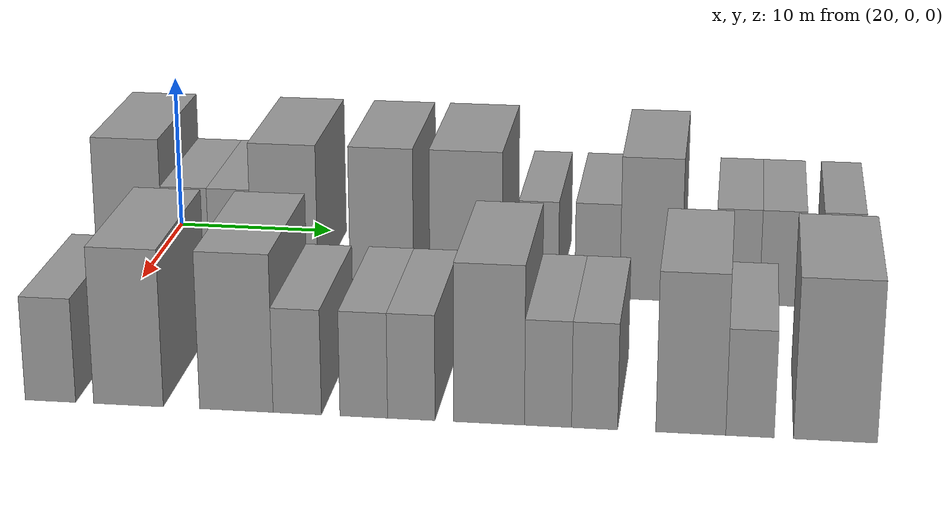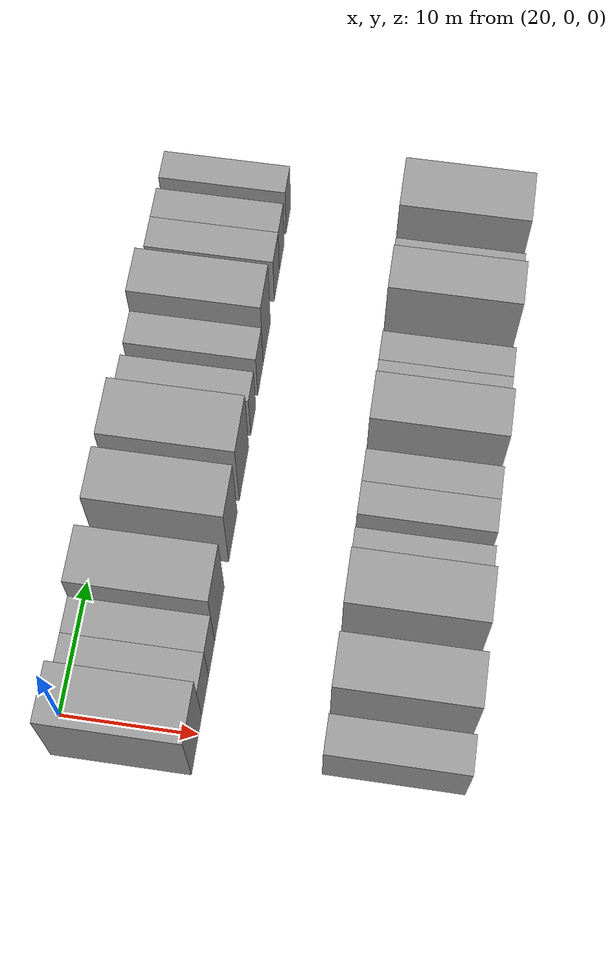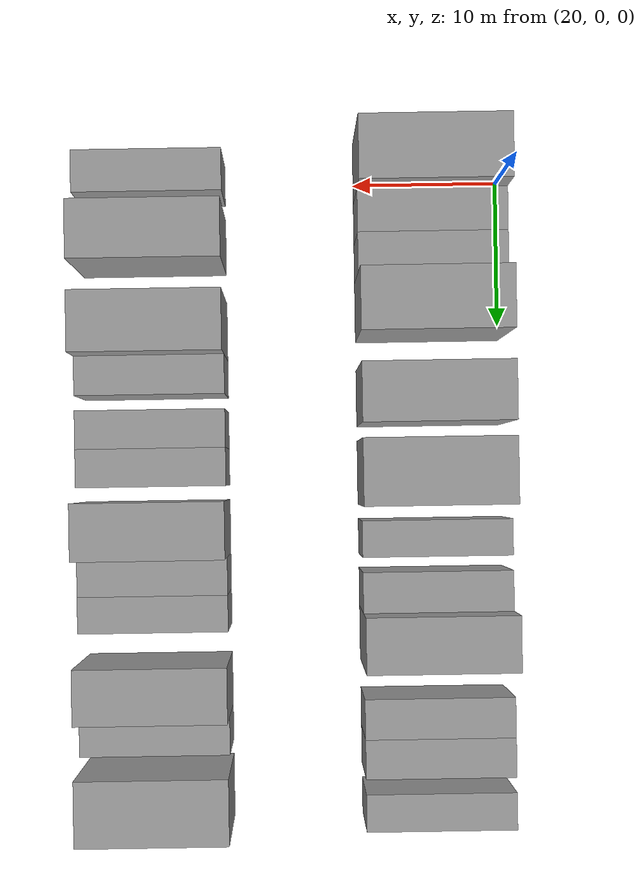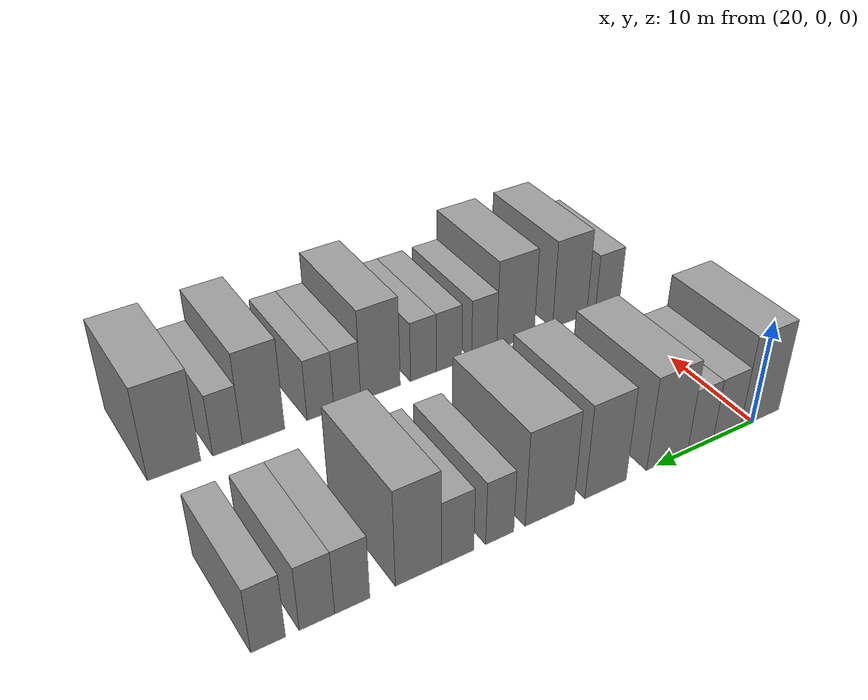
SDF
<sdf version="1.6">
 <world name="default">
  <model name="building_49">
   <static>1</static>
   <pose>25.0000 -0.7692 0 0.000000 0.000000 0.000000</pose>
   <link name="link">
    <pose>0 0 4.50 0 0 0</pose>
    <collision name="collision"><geometry><box><size>10.0000 4.2088 9.0000</size></box></geometry></collision>
    <visual name="visual">
     <cast_shadows>0</cast_shadows>
     <geometry><box><size>10.0000 4.2088 9.0000</size></box></geometry>
     <material>
      <script>
       <uri>model://grey_wall/materials/scripts</uri>
       <uri>model://grey_wall/materials/textures</uri>
       <name>vrc/grey_wall</name>
      </script>
     </material>
    </visual>
   </link>
  </model>
  <model name="building_50">
   <static>1</static>
   <pose>25.0000 2.7833 0 0.000000 0.000000 0.000000</pose>
   <link name="link">
    <pose>0 0 3.00 0 0 0</pose>
    <collision name="collision"><geometry><box><size>10.0000 2.8960 6.0000</size></box></geometry></collision>
    <visual name="visual">
     <cast_shadows>0</cast_shadows>
     <geometry><box><size>10.0000 2.8960 6.0000</size></box></geometry>
     <material>
      <script>
       <uri>model://grey_wall/materials/scripts</uri>
       <uri>model://grey_wall/materials/textures</uri>
       <name>vrc/grey_wall</name>
      </script>
     </material>
    </visual>
   </link>
  </model>
  <model name="building_51">
   <static>1</static>
   <pose>25.0000 5.5601 0 0.000000 0.000000 0.000000</pose>
   <link name="link">
    <pose>0 0 3.00 0 0 0</pose>
    <collision name="collision"><geometry><box><size>10.0000 2.6575 6.0000</size></box></geometry></collision>
    <visual name="visual">
     <cast_shadows>0</cast_shadows>
     <geometry><box><size>10.0000 2.6575 6.0000</size></box></geometry>
     <material>
      <script>
       <uri>model://grey_wall/materials/scripts</uri>
       <uri>model://grey_wall/materials/textures</uri>
       <name>vrc/grey_wall</name>
      </script>
     </material>
    </visual>
   </link>
  </model>
  <model name="building_52">
   <static>1</static>
   <pose>25.0000 8.9630 0 0.000000 0.000000 0.000000</pose>
   <link name="link">
    <pose>0 0 4.50 0 0 0</pose>
    <collision name="collision"><geometry><box><size>10.0000 4.1483 9.0000</size></box></geometry></collision>
    <visual name="visual">
     <cast_shadows>0</cast_shadows>
     <geometry><box><size>10.0000 4.1483 9.0000</size></box></geometry>
     <material>
      <script>
       <uri>model://grey_wall/materials/scripts</uri>
       <uri>model://grey_wall/materials/textures</uri>
       <name>vrc/grey_wall</name>
      </script>
     </material>
    </visual>
   </link>
  </model>
  <model name="building_53">
   <static>1</static>
   <pose>25.0000 15.0030 0 0.000000 0.000000 0.000000</pose>
   <link name="link">
    <pose>0 0 4.50 0 0 0</pose>
    <collision name="collision"><geometry><box><size>10.0000 3.9316 9.0000</size></box></geometry></collision>
    <visual name="visual">
     <cast_shadows>0</cast_shadows>
     <geometry><box><size>10.0000 3.9316 9.0000</size></box></geometry>
     <material>
      <script>
       <uri>model://grey_wall/materials/scripts</uri>
       <uri>model://grey_wall/materials/textures</uri>
       <name>vrc/grey_wall</name>
      </script>
     </material>
    </visual>
   </link>
  </model>
  <model name="building_54">
   <static>1</static>
   <pose>25.0000 20.1888 0 0.000000 0.000000 0.000000</pose>
   <link name="link">
    <pose>0 0 4.50 0 0 0</pose>
    <collision name="collision"><geometry><box><size>10.0000 4.4401 9.0000</size></box></geometry></collision>
    <visual name="visual">
     <cast_shadows>0</cast_shadows>
     <geometry><box><size>10.0000 4.4401 9.0000</size></box></geometry>
     <material>
      <script>
       <uri>model://grey_wall/materials/scripts</uri>
       <uri>model://grey_wall/materials/textures</uri>
       <name>vrc/grey_wall</name>
      </script>
     </material>
    </visual>
   </link>
  </model>
  <model name="building_55">
   <static>1</static>
   <pose>25.0000 24.6258 0 0.000000 0.000000 0.000000</pose>
   <link name="link">
    <pose>0 0 3.00 0 0 0</pose>
    <collision name="collision"><geometry><box><size>10.0000 2.4338 6.0000</size></box></geometry></collision>
    <visual name="visual">
     <cast_shadows>0</cast_shadows>
     <geometry><box><size>10.0000 2.4338 6.0000</size></box></geometry>
     <material>
      <script>
       <uri>model://grey_wall/materials/scripts</uri>
       <uri>model://grey_wall/materials/textures</uri>
       <name>vrc/grey_wall</name>
      </script>
     </material>
    </visual>
   </link>
  </model>
  <model name="building_56">
   <static>1</static>
   <pose>25.0000 28.2052 0 0.000000 0.000000 0.000000</pose>
   <link name="link">
    <pose>0 0 3.00 0 0 0</pose>
    <collision name="collision"><geometry><box><size>10.0000 2.7251 6.0000</size></box></geometry></collision>
    <visual name="visual">
     <cast_shadows>0</cast_shadows>
     <geometry><box><size>10.0000 2.7251 6.0000</size></box></geometry>
     <material>
      <script>
       <uri>model://grey_wall/materials/scripts</uri>
       <uri>model://grey_wall/materials/textures</uri>
       <name>vrc/grey_wall</name>
      </script>
     </material>
    </visual>
   </link>
  </model>
  <model name="building_57">
   <static>1</static>
   <pose>25.0000 31.4204 0 0.000000 0.000000 0.000000</pose>
   <link name="link">
    <pose>0 0 4.50 0 0 0</pose>
    <collision name="collision"><geometry><box><size>10.0000 3.7054 9.0000</size></box></geometry></collision>
    <visual name="visual">
     <cast_shadows>0</cast_shadows>
     <geometry><box><size>10.0000 3.7054 9.0000</size></box></geometry>
     <material>
      <script>
       <uri>model://grey_wall/materials/scripts</uri>
       <uri>model://grey_wall/materials/textures</uri>
       <name>vrc/grey_wall</name>
      </script>
     </material>
    </visual>
   </link>
  </model>
  <model name="building_58">
   <static>1</static>
   <pose>25.0000 36.6185 0 0.000000 0.000000 0.000000</pose>
   <link name="link">
    <pose>0 0 3.00 0 0 0</pose>
    <collision name="collision"><geometry><box><size>10.0000 2.6908 6.0000</size></box></geometry></collision>
    <visual name="visual">
     <cast_shadows>0</cast_shadows>
     <geometry><box><size>10.0000 2.6908 6.0000</size></box></geometry>
     <material>
      <script>
       <uri>model://grey_wall/materials/scripts</uri>
       <uri>model://grey_wall/materials/textures</uri>
       <name>vrc/grey_wall</name>
      </script>
     </material>
    </visual>
   </link>
  </model>
  <model name="building_59">
   <static>1</static>
   <pose>25.0000 39.2777 0 0.000000 0.000000 0.000000</pose>
   <link name="link">
    <pose>0 0 3.00 0 0 0</pose>
    <collision name="collision"><geometry><box><size>10.0000 2.6276 6.0000</size></box></geometry></collision>
    <visual name="visual">
     <cast_shadows>0</cast_shadows>
     <geometry><box><size>10.0000 2.6276 6.0000</size></box></geometry>
     <material>
      <script>
       <uri>model://grey_wall/materials/scripts</uri>
       <uri>model://grey_wall/materials/textures</uri>
       <name>vrc/grey_wall</name>
      </script>
     </material>
    </visual>
   </link>
  </model>
  <model name="building_60">
   <static>1</static>
   <pose>25.0000 42.8340 0 0.000000 0.000000 0.000000</pose>
   <link name="link">
    <pose>0 0 3.00 0 0 0</pose>
    <collision name="collision"><geometry><box><size>10.0000 2.4851 6.0000</size></box></geometry></collision>
    <visual name="visual">
     <cast_shadows>0</cast_shadows>
     <geometry><box><size>10.0000 2.4851 6.0000</size></box></geometry>
     <material>
      <script>
       <uri>model://grey_wall/materials/scripts</uri>
       <uri>model://grey_wall/materials/textures</uri>
       <name>vrc/grey_wall</name>
      </script>
     </material>
    </visual>
   </link>
  </model>
  <model name="building_149">
   <static>1</static>
   <pose>44.0000 -0.1097 0 0.000000 0.000000 0.000000</pose>
   <link name="link">
    <pose>0 0 3.00 0 0 0</pose>
    <collision name="collision"><geometry><box><size>10.0000 2.8105 6.0000</size></box></geometry></collision>
    <visual name="visual">
     <cast_shadows>0</cast_shadows>
     <geometry><box><size>10.0000 2.8105 6.0000</size></box></geometry>
     <material>
      <script>
       <uri>model://grey_wall/materials/scripts</uri>
       <uri>model://grey_wall/materials/textures</uri>
       <name>vrc/grey_wall</name>
      </script>
     </material>
    </visual>
   </link>
  </model>
  <model name="building_150">
   <static>1</static>
   <pose>44.0000 4.2238 0 0.000000 0.000000 0.000000</pose>
   <link name="link">
    <pose>0 0 4.50 0 0 0</pose>
    <collision name="collision"><geometry><box><size>10.0000 3.8566 9.0000</size></box></geometry></collision>
    <visual name="visual">
     <cast_shadows>0</cast_shadows>
     <geometry><box><size>10.0000 3.8566 9.0000</size></box></geometry>
     <material>
      <script>
       <uri>model://grey_wall/materials/scripts</uri>
       <uri>model://grey_wall/materials/textures</uri>
       <name>vrc/grey_wall</name>
      </script>
     </material>
    </visual>
   </link>
  </model>
  <model name="building_151">
   <static>1</static>
   <pose>44.0000 10.1612 0 0.000000 0.000000 0.000000</pose>
   <link name="link">
    <pose>0 0 4.50 0 0 0</pose>
    <collision name="collision"><geometry><box><size>10.0000 4.0180 9.0000</size></box></geometry></collision>
    <visual name="visual">
     <cast_shadows>0</cast_shadows>
     <geometry><box><size>10.0000 4.0180 9.0000</size></box></geometry>
     <material>
      <script>
       <uri>model://grey_wall/materials/scripts</uri>
       <uri>model://grey_wall/materials/textures</uri>
       <name>vrc/grey_wall</name>
      </script>
     </material>
    </visual>
   </link>
  </model>
  <model name="building_152">
   <static>1</static>
   <pose>44.0000 13.4859 0 0.000000 0.000000 0.000000</pose>
   <link name="link">
    <pose>0 0 3.00 0 0 0</pose>
    <collision name="collision"><geometry><box><size>10.0000 2.6315 6.0000</size></box></geometry></collision>
    <visual name="visual">
     <cast_shadows>0</cast_shadows>
     <geometry><box><size>10.0000 2.6315 6.0000</size></box></geometry>
     <material>
      <script>
       <uri>model://grey_wall/materials/scripts</uri>
       <uri>model://grey_wall/materials/textures</uri>
       <name>vrc/grey_wall</name>
      </script>
     </material>
    </visual>
   </link>
  </model>
  <model name="building_153">
   <static>1</static>
   <pose>44.0000 17.0871 0 0.000000 0.000000 0.000000</pose>
   <link name="link">
    <pose>0 0 3.00 0 0 0</pose>
    <collision name="collision"><geometry><box><size>10.0000 2.5710 6.0000</size></box></geometry></collision>
    <visual name="visual">
     <cast_shadows>0</cast_shadows>
     <geometry><box><size>10.0000 2.5710 6.0000</size></box></geometry>
     <material>
      <script>
       <uri>model://grey_wall/materials/scripts</uri>
       <uri>model://grey_wall/materials/textures</uri>
       <name>vrc/grey_wall</name>
      </script>
     </material>
    </visual>
   </link>
  </model>
  <model name="building_154">
   <static>1</static>
   <pose>44.0000 19.6492 0 0.000000 0.000000 0.000000</pose>
   <link name="link">
    <pose>0 0 3.00 0 0 0</pose>
    <collision name="collision"><geometry><box><size>10.0000 2.5532 6.0000</size></box></geometry></collision>
    <visual name="visual">
     <cast_shadows>0</cast_shadows>
     <geometry><box><size>10.0000 2.5532 6.0000</size></box></geometry>
     <material>
      <script>
       <uri>model://grey_wall/materials/scripts</uri>
       <uri>model://grey_wall/materials/textures</uri>
       <name>vrc/grey_wall</name>
      </script>
     </material>
    </visual>
   </link>
  </model>
  <model name="building_155">
   <static>1</static>
   <pose>44.0000 23.8129 0 0.000000 0.000000 0.000000</pose>
   <link name="link">
    <pose>0 0 4.50 0 0 0</pose>
    <collision name="collision"><geometry><box><size>10.0000 3.7741 9.0000</size></box></geometry></collision>
    <visual name="visual">
     <cast_shadows>0</cast_shadows>
     <geometry><box><size>10.0000 3.7741 9.0000</size></box></geometry>
     <material>
      <script>
       <uri>model://grey_wall/materials/scripts</uri>
       <uri>model://grey_wall/materials/textures</uri>
       <name>vrc/grey_wall</name>
      </script>
     </material>
    </visual>
   </link>
  </model>
  <model name="building_156">
   <static>1</static>
   <pose>44.0000 26.9471 0 0.000000 0.000000 0.000000</pose>
   <link name="link">
    <pose>0 0 3.00 0 0 0</pose>
    <collision name="collision"><geometry><box><size>10.0000 2.4944 6.0000</size></box></geometry></collision>
    <visual name="visual">
     <cast_shadows>0</cast_shadows>
     <geometry><box><size>10.0000 2.4944 6.0000</size></box></geometry>
     <material>
      <script>
       <uri>model://grey_wall/materials/scripts</uri>
       <uri>model://grey_wall/materials/textures</uri>
       <name>vrc/grey_wall</name>
      </script>
     </material>
    </visual>
   </link>
  </model>
  <model name="building_157">
   <static>1</static>
   <pose>44.0000 29.4114 0 0.000000 0.000000 0.000000</pose>
   <link name="link">
    <pose>0 0 3.00 0 0 0</pose>
    <collision name="collision"><geometry><box><size>10.0000 2.4341 6.0000</size></box></geometry></collision>
    <visual name="visual">
     <cast_shadows>0</cast_shadows>
     <geometry><box><size>10.0000 2.4341 6.0000</size></box></geometry>
     <material>
      <script>
       <uri>model://grey_wall/materials/scripts</uri>
       <uri>model://grey_wall/materials/textures</uri>
       <name>vrc/grey_wall</name>
      </script>
     </material>
    </visual>
   </link>
  </model>
  <model name="building_158">
   <static>1</static>
   <pose>44.0000 34.4591 0 0.000000 0.000000 0.000000</pose>
   <link name="link">
    <pose>0 0 4.50 0 0 0</pose>
    <collision name="collision"><geometry><box><size>10.0000 3.6613 9.0000</size></box></geometry></collision>
    <visual name="visual">
     <cast_shadows>0</cast_shadows>
     <geometry><box><size>10.0000 3.6613 9.0000</size></box></geometry>
     <material>
      <script>
       <uri>model://grey_wall/materials/scripts</uri>
       <uri>model://grey_wall/materials/textures</uri>
       <name>vrc/grey_wall</name>
      </script>
     </material>
    </visual>
   </link>
  </model>
  <model name="building_159">
   <static>1</static>
   <pose>44.0000 37.5465 0 0.000000 0.000000 0.000000</pose>
   <link name="link">
    <pose>0 0 3.00 0 0 0</pose>
    <collision name="collision"><geometry><box><size>10.0000 2.5134 6.0000</size></box></geometry></collision>
    <visual name="visual">
     <cast_shadows>0</cast_shadows>
     <geometry><box><size>10.0000 2.5134 6.0000</size></box></geometry>
     <material>
      <script>
       <uri>model://grey_wall/materials/scripts</uri>
       <uri>model://grey_wall/materials/textures</uri>
       <name>vrc/grey_wall</name>
      </script>
     </material>
    </visual>
   </link>
  </model>
  <model name="building_160">
   <static>1</static>
   <pose>44.0000 41.9660 0 0.000000 0.000000 0.000000</pose>
   <link name="link">
    <pose>0 0 4.50 0 0 0</pose>
    <collision name="collision"><geometry><box><size>10.0000 4.3256 9.0000</size></box></geometry></collision>
    <visual name="visual">
     <cast_shadows>0</cast_shadows>
     <geometry><box><size>10.0000 4.3256 9.0000</size></box></geometry>
     <material>
      <script>
       <uri>model://grey_wall/materials/scripts</uri>
       <uri>model://grey_wall/materials/textures</uri>
       <name>vrc/grey_wall</name>
      </script>
     </material>
    </visual>
   </link>
  </model>
 </world>
</sdf>
